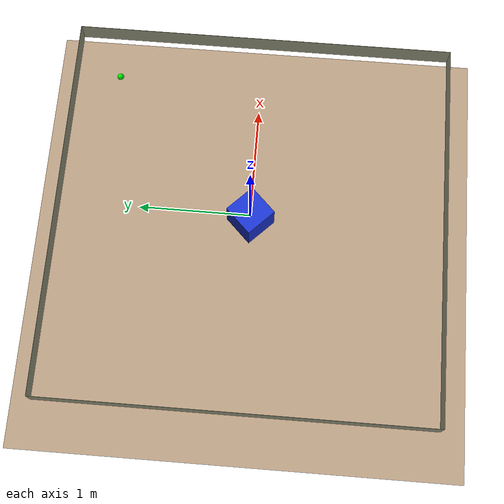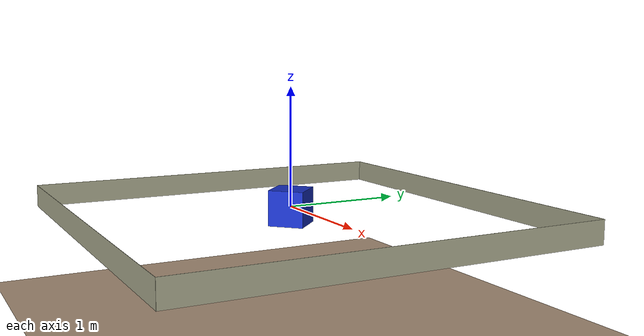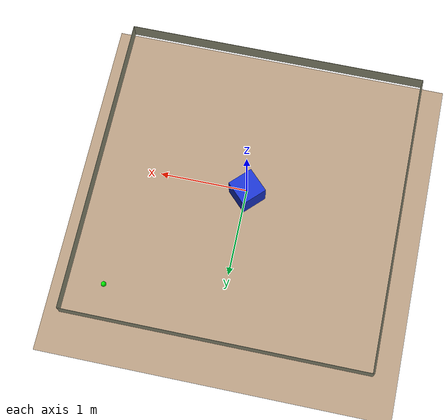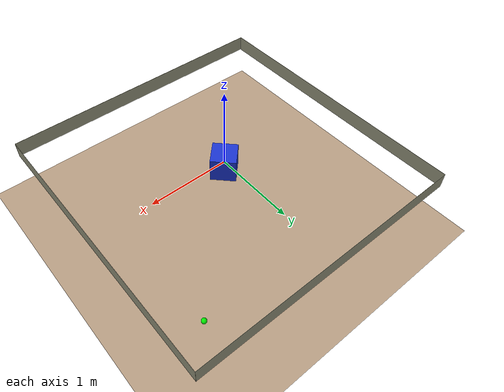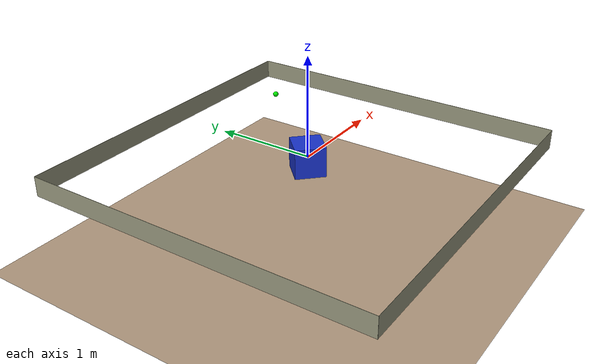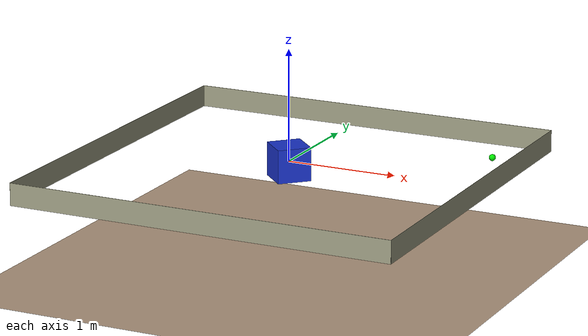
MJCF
<mujoco model="table_scenario">
    <compiler coordinate="local" angle="radian" strippath="false" />
    <size njmax="795" nconmax="250" nstack="631875" />

   <asset>
        <material name="MatGnd" specular=".3" shininess=".3" reflectance="0.3" rgba=".5 .55 .5 1"/>
   </asset>

	<visual>
        <map fogstart="1.5" fogend="3"/>
		<quality shadowsize="0"/>
	</visual>

   <default>
		<geom margin="0.001"/>
   </default>

    <default class='object'>
        <geom friction="0.00 0.00 0.0" />
    </default>

    <worldbody>
        <light directional="false" cutoff="90" exponent="1" diffuse="1 1 1" specular="0 0 0" pos="1 0 1.5" dir="-1 0 -2.5"/>
        <geom name="ground" class='object' type="plane" pos="0 0 -0.925" size="4 4 .05" rgba="0.7 0.6 0.5 1"/>
        <geom name="tableTop" class='object' material="MatGnd" type="plane" pos="0. 0.0 -0.15" size="1.75 1.75 0.5" rgba=".6 .6 .5 1" contype="1" conaffinity="1"/>
        <geom name="tableSide1" class='object' material="MatGnd" type="box" pos="1.75 0.0 -.05" size="0.001 1.75 0.1" rgba=".6 .6 .5 1" contype="1" conaffinity="1"/>
        <geom name="tableSide2" class='object' material="MatGnd" type="box" pos="-1.75 0.0 -.05" size="0.001 1.75 0.1" rgba=".6 .6 .5 1" contype="1" conaffinity="1"/>
        <geom name="tableSide3" class='object' material="MatGnd" type="box" pos="0.0 1.75 -.05" size="1.75 0.001 0.1" rgba=".6 .6 .5 1" contype="1" conaffinity="1"/>
        <geom name="tableSide4" class='object' material="MatGnd" type="box" pos="0.0 -1.75 -.05" size="1.75 0.001 0.1" rgba=".6 .6 .5 1" contype="1" conaffinity="1"/>

        <site name="goal" type="sphere" size="0.03"  pos="1.35 1.35 -0.15" rgba="0.0 0.9 0.0 1"/>

        <!--  ================= OBJECT ================= /-->
          <body name="Box" pos="0. 0.0 0.0" quat="0.924 -0 0 0.383">
            <inertial pos="0 0 0" mass="1" diaginertia="0.001 0.001 0.001" />
            <geom  class="object" name="push_box" type="box"  size="0.15 0.15 0.15" pos="0.0 0.0 -0." rgba="0.1 0.2 0.8 1" user="1" contype="1" conaffinity="1"/>
            <site name="center" type="sphere" size="0.03"  pos="0. 0. 0" rgba="0.2 0.6 0.9 1"/>
            <joint name="fr" type="free" limited='false' damping="0" armature="0" user="010"/>
            <site name="f1" type="sphere" size="0.0001"  pos="0.65   0.    -0.349" />
            <site name="f2" type="sphere" size="0.0001"  pos="0.65   0.15  -0.199" />
            <site name="f3" type="sphere" size="0.0001"  pos="0.65   0.    -0.049" />
            <site name="f4" type="sphere" size="0.0001"  pos="0.65  -0.15  -0.199" />
            <site name="f5" type="sphere" size="0.0001"  pos="0.8    0.    -0.199" />
            <site name="f6" type="sphere" size="0.0001"  pos="0.5    0.    -0.199" />

            <site name="c1" type="sphere" size="0.0001"  pos="0.8    0.15  -0.349" />
            <site name="c2" type="sphere" size="0.0001"  pos="0.5    0.15  -0.349" />
            <site name="c3" type="sphere" size="0.0001"  pos="0.5   -0.15  -0.349" />
            <site name="c4" type="sphere" size="0.0001"  pos="0.8   -0.15  -0.349" />
            <site name="c5" type="sphere" size="0.0001"  pos="0.8   -0.15  -0.049" />
            <site name="c6" type="sphere" size="0.0001"  pos="0.8    0.15  -0.049" />
            <site name="c7" type="sphere" size="0.0001"  pos="0.5    0.15  -0.049" />
            <site name="c8" type="sphere" size="0.0001"  pos="0.5   -0.15  -0.049" />

            <site name="c1c2" type="sphere" size="0.0001"  pos="0.65   0.15  -0.349" />
            <site name="c2c3" type="sphere" size="0.0001"  pos="0.5    0.    -0.349" />
            <site name="c3c4" type="sphere" size="0.0001"  pos="0.65  -0.15  -0.349" />
            <site name="c4c5" type="sphere" size="0.0001"  pos="0.8   -0.15  -0.199" />
            <site name="c5c6" type="sphere" size="0.0001"  pos="0.8    0.    -0.049" />
            <site name="c6c7" type="sphere" size="0.0001"  pos="0.65   0.15  -0.049" />
            <site name="c7c8" type="sphere" size="0.0001"  pos="0.5    0.    -0.049" />
            <site name="c8c5" type="sphere" size="0.0001"  pos="0.65  -0.15  -0.049" />
            <site name="c4c1" type="sphere" size="0.0001"  pos="0.8    0.    -0.349" />
            <site name="c6c1" type="sphere" size="0.0001"  pos="0.8    0.15  -0.199" />
            <site name="c7c2" type="sphere" size="0.0001"  pos="0.5    0.15  -0.199" />
            <site name="c8c3" type="sphere" size="0.0001"  pos="0.5   -0.15  -0.199" />

            <site name="f1c1" type="sphere" size="0.0001"  pos="0.725  0.075 -0.349" />
            <site name="f1c2" type="sphere" size="0.0001"  pos="0.575  0.075 -0.349" />
            <site name="f1c3" type="sphere" size="0.0001"  pos="0.575 -0.075 -0.349" />
            <site name="f1c4" type="sphere" size="0.0001"  pos="0.725 -0.075 -0.349" />
            <site name="f1c1c2" type="sphere" size="0.0001"  pos="0.65   0.075 -0.349" />
            <site name="f1c2c3" type="sphere" size="0.0001"  pos="0.575  0.    -0.349" />
            <site name="f1c3c4" type="sphere" size="0.0001"  pos=" 0.65  -0.075 -0.349" />
            <site name="f1c4c1" type="sphere" size="0.0001"  pos="0.725  0.    -0.349" />

            <site name="f2c1" type="sphere" size="0.0001"  pos="0.725  0.15  -0.274" />
            <site name="f2c2" type="sphere" size="0.0001"  pos="0.575  0.15  -0.274" />
            <site name="f2c6" type="sphere" size="0.0001"  pos="0.725  0.15  -0.124" />
            <site name="f2c7" type="sphere" size="0.0001"  pos="0.575  0.15  -0.124" />
            <site name="f2c1c2" type="sphere" size="0.0001"  pos="0.65   0.15  -0.274" />
            <site name="f2c7c2" type="sphere" size="0.0001"  pos="0.575  0.15  -0.199" />
            <site name="f2c6c1" type="sphere" size="0.0001"  pos="0.725  0.15  -0.199" />
            <site name="f2c6c7" type="sphere" size="0.0001"  pos="0.65   0.15  -0.124" />

            <site name="f3c6" type="sphere" size="0.0001"  pos="0.725  0.075 -0.049" />
            <site name="f3c7" type="sphere" size="0.0001"  pos="0.575  0.075 -0.049" />
            <site name="f3c8" type="sphere" size="0.0001"  pos="0.575 -0.075 -0.049" />
            <site name="f3c5" type="sphere" size="0.0001"  pos="0.725 -0.075 -0.049" />
            <site name="f3c1c2" type="sphere" size="0.0001"  pos="0.575  0.    -0.049" />
            <site name="f3c8c5" type="sphere" size="0.0001"  pos="0.65  -0.075 -0.049" />
            <site name="f3c5c6" type="sphere" size="0.0001"  pos="0.725  0.    -0.049" />
            <site name="f3c6c7" type="sphere" size="0.0001"  pos="0.65   0.075 -0.049" />

            <site name="f4c3" type="sphere" size="0.0001"  pos="0.575 -0.15  -0.274" />
            <site name="f4c4" type="sphere" size="0.0001"  pos="0.725 -0.15  -0.274" />
            <site name="f4c5" type="sphere" size="0.0001"  pos="0.725 -0.15  -0.124" />
            <site name="f4c8" type="sphere" size="0.0001"  pos="0.575 -0.15  -0.124" />
            <site name="f4c3c4" type="sphere" size="0.0001"  pos="0.65  -0.15  -0.274" />
            <site name="f4c4c5" type="sphere" size="0.0001"  pos="0.725 -0.15  -0.199" />
            <site name="f4c8c5" type="sphere" size="0.0001"  pos="0.65  -0.15  -0.124" />
            <site name="f4c8c3" type="sphere" size="0.0001"  pos="0.575 -0.15  -0.199" />

            <site name="f5c1" type="sphere" size="0.0001"  pos="0.8    0.075 -0.274" />
            <site name="f5c4" type="sphere" size="0.0001"  pos="0.8   -0.075 -0.274" />
            <site name="f5c5" type="sphere" size="0.0001"  pos="0.8   -0.075 -0.124" />
            <site name="f5c6" type="sphere" size="0.0001"  pos="0.8    0.075 -0.124" />
            <site name="f5c4c1" type="sphere" size="0.0001"  pos="0.8    0.    -0.274" />
            <site name="f5c6c1" type="sphere" size="0.0001"  pos="0.8    0.075 -0.199" />
            <site name="f5c5c6" type="sphere" size="0.0001"  pos="0.8    0.    -0.124" />
            <site name="f5c4c5" type="sphere" size="0.0001"  pos="0.8   -0.075 -0.199" />

            <site name="f6c2" type="sphere" size="0.0001"  pos="0.5    0.075 -0.274" />
            <site name="f6c3" type="sphere" size="0.0001"  pos="0.5   -0.075 -0.274" />
            <site name="f6c7" type="sphere" size="0.0001"  pos="0.5    0.075 -0.124" />
            <site name="f6c8" type="sphere" size="0.0001"  pos="0.5   -0.075 -0.124" />
            <site name="f6c2c3" type="sphere" size="0.0001"  pos="0.5    0.    -0.274" />
            <site name="f6c7c8" type="sphere" size="0.0001"  pos="0.5    0.    -0.124" />
            <site name="f6c7c2" type="sphere" size="0.0001"  pos="0.5    0.075 -0.199" />
            <site name="f6c8c3" type="sphere" size="0.0001"  pos="0.5   -0.075 -0.199" />

        </body>

    </worldbody>
</mujoco>
